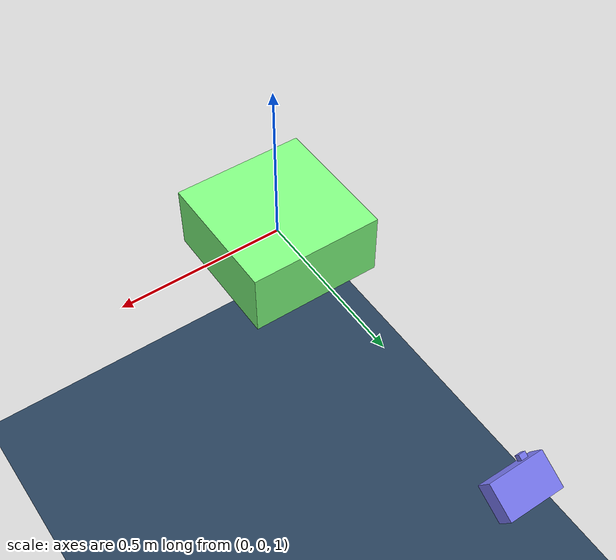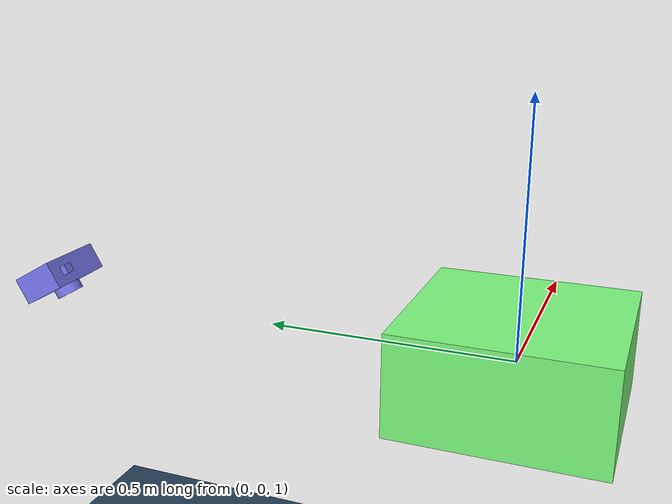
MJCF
<mujoco model="sample_ros_mujoco">
  <compiler angle="radian"/>

  <option integrator="implicitfast"/>

  <visual>
    <headlight ambient="0.7 0.7 0.7" diffuse="0.2 0.2 0.2" specular="0.1 0.1 0.1"/>
    <scale contactwidth="0.02" contactheight="0.5"/>
    <rgba rangefinder="1 1 0.1 0.1"/>
  </visual>

  <statistic meansize="0.1" extent="1" center="0 0 1"/>

  <extension>
    <plugin plugin="RosMujoco::ClockPublisher"/>
    <plugin plugin="RosMujoco::PosePublisher"/>
    <plugin plugin="RosMujoco::ImagePublisher"/>
    <plugin plugin="RosMujoco::ActuatorCommand"/>
    <plugin plugin="RosMujoco::ExternalForce"/>
    <plugin plugin="RosMujoco::SensorPublisher"/>
  </extension>

  <asset>
    <texture type="2d" name="floor" builtin="checker" mark="edge" rgb1="0.1 0.2 0.3" rgb2="0.2 0.3 0.4" markrgb="0.2 0.3 0.4" width="300" height="300"/>
    <material name="floor" texture="floor" texuniform="true" texrepeat="10 10"/>
  </asset>

  <worldbody>
    <geom name="floor" size="10 10 0.01" pos="0 0 -0.01" type="plane" material="floor"/>
    <light pos="1 0 0.3" dir="-0.957826 0 -0.287348"/>
    <light pos="-1 0 0.3" dir="0.957826 0 -0.287348"/>
    <plugin plugin="RosMujoco::ClockPublisher">
      <config key="topic_name" value="/clock"/>
      <config key="publish_rate" value="100"/>
    </plugin>
    <body name="movable_box" pos="0 0 1">
      <joint type="free" limited="false" actuatorfrclimited="false"/>
      <geom size="0.2 0.2 0.1" type="box" mass="0.1" rgba="0.5 1 0.5 1"/>
      <site name="object_center" pos="0 0 0"/>
      <plugin plugin="RosMujoco::ExternalForce">
        <config key="topic_name" value="/external_force"/>
        <config key="vis_scale" value="0.1"/>
      </plugin>
    </body>
    <body name="camera" pos="0 1 1" quat="0 0 0.258819 0.965926">
      <joint name="camera_pan" pos="0 0 0" axis="0 1 0" range="-1.5708 1.5708" armature="0.1" damping="0.5"/>
      <joint name="camera_tilt" pos="0 0 0" axis="1 0 0" range="-1.5708 1.5708" armature="0.1" damping="0.5"/>
      <joint name="camera_roll" pos="0 0 0" axis="0 0 1" range="-1.5708 1.5708" armature="0.1" damping="0.5"/>
      <camera name="camera" pos="0 0 0" fovy="58"/>
      <body name="camera_frame" quat="0 1 0 0"/>
      <body name="camera_marker" pos="0 0 0.05">
        <geom size="0.08 0.05 0.03" type="box" mass="1" rgba="0.5 0.5 1 1"/>
        <geom size="0.01 0.01 0.01" pos="0.04 0.055 0" type="box" mass="0" rgba="0.5 0.5 1 1"/>
        <geom size="0.03 0.01" pos="0 0 -0.04" type="cylinder" mass="0" rgba="0.5 0.5 1 1"/>
      </body>
    </body>
  </worldbody>

  <actuator>
    <general name="camera_pan" joint="camera_pan" biastype="affine" biasprm="0 -1"/>
    <general name="camera_tilt" joint="camera_tilt" biastype="affine" biasprm="0 -1"/>
    <general name="camera_roll" joint="camera_roll" biastype="affine" biasprm="0 -1"/>
    <plugin name="camera_pan_control" joint="camera_pan" plugin="RosMujoco::ActuatorCommand">
      <config key="actuator_name" value="camera_pan"/>
      <config key="topic_name" value="/camera_pan"/>
    </plugin>
  </actuator>

  <sensor>
    <plugin objtype="xbody" objname="movable_box" plugin="RosMujoco::PosePublisher" name="pose_publisher">
      <config key="frame_id" value="map"/>
      <config key="pose_topic_name" value="/pose"/>
      <config key="vel_topic_name" value="/vel"/>
      <config key="publish_rate" value="30"/>
      <config key="output_tf" value="false"/>
    </plugin>
    <plugin objtype="xbody" objname="camera_frame" plugin="RosMujoco::PosePublisher" name="tf_publisher">
      <config key="frame_id" value="map"/>
      <config key="publish_rate" value="30"/>
      <config key="output_tf" value="true"/>
      <config key="tf_child_frame_id" value="camera"/>
    </plugin>
    <plugin objtype="camera" objname="camera" plugin="RosMujoco::ImagePublisher" name="image_publisher">
      <config key="frame_id" value="camera"/>
      <config key="color_topic_name" value="/image/color"/>
      <config key="depth_topic_name" value="/image/depth"/>
      <config key="info_topic_name" value="/image/camera_info"/>
      <config key="height" value="300"/>
      <config key="width" value="400"/>
      <config key="publish_rate" value="15"/>
    </plugin>
    <rangefinder site="object_center" name="box_rangefinder"/>
    <plugin objtype="xbody" objname="movable_box" plugin="RosMujoco::SensorPublisher" name="sensor_publisher_scalar">
      <config key="sensor_name" value="box_rangefinder"/>
      <config key="frame_id" value="map"/>
      <config key="topic_name" value="/box_rangefinder"/>
      <config key="publish_rate" value="30"/>
    </plugin>
    <framepos objtype="site" objname="object_center" name="box_framepos"/>
    <plugin objtype="xbody" objname="movable_box" plugin="RosMujoco::SensorPublisher" name="sensor_publisher_point">
      <config key="sensor_name" value="box_framepos"/>
      <config key="frame_id" value="map"/>
      <config key="topic_name" value="/box_framepos"/>
      <config key="publish_rate" value="30"/>
    </plugin>
    <framequat objtype="site" objname="object_center" name="box_framequat"/>
    <plugin objtype="xbody" objname="movable_box" plugin="RosMujoco::SensorPublisher" name="sensor_publisher_quat">
      <config key="sensor_name" value="box_framequat"/>
      <config key="frame_id" value="map"/>
      <config key="topic_name" value="/box_framequat"/>
      <config key="publish_rate" value="30"/>
    </plugin>
  </sensor>
</mujoco>
